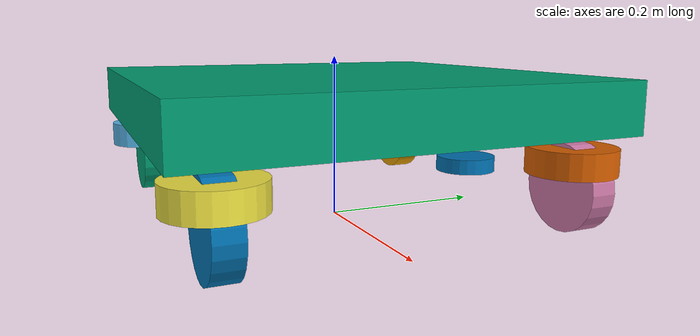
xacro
<?xml version="1.0"?>
<robot name="omni_robot" xmlns:xacro="https://ros.org/wiki/xacro">
	<xacro:arg name="robot_name" default="omni_robot"/>
	<xacro:include filename="$(find omni_sim)/xacro/wheel_macro.xacro"/>
	<xacro:include filename="$(find omni_sim)/xacro/control_macro.xacro"/>
	<xacro:include filename="$(find omni_sim)/xacro/sensor_macro.xacro"/>

	<link name="base_footprint"/>

	<joint name="base_joint" type="fixed">
		<parent link="base_footprint"/>
		<child link="base_link"/>
	</joint>

	<link name="base_link"/>

	<joint name="body_joint" type="fixed">
		<parent link="base_link"/>
		<child link="body_link"/>
		<origin xyz="0 0 0.15" rpy="0 0 0"/>
	</joint>
	<link name="body_link">
		<inertial>
			<origin xyz="0 0 0" rpy="0 0 0"/>
			<mass value="2.0"/>
			<inertia ixx="0.001" ixy="0" ixz="0" iyy="0.001" iyz="0" izz="0.002"/>
		</inertial>
		<visual>
			<geometry>
				<box size="0.5 0.5 0.06"/>
			</geometry>
		</visual>
		<collision>
			<geometry>
				<box size="0.5 0.5 0.06"/>
			</geometry>
		</collision>
	</link>

	<xacro:imu_macro prefix="imu" parent="body_link" xyz="0 0 0" rpy="0 0 0"/>
	<xacro:lidar_macro prefix="laser" parent="body_link" xyz="0 0.2 -0.10" rpy="0 0 0"/>

	<xacro:wheel_macro prefix="fr_wheel" parent="body_link" xyz="0.2 0.2 -0.06"/>
	<xacro:wheel_macro prefix="fl_wheel" parent="body_link" xyz="-0.2 0.2 -0.06"/>
	<xacro:wheel_macro prefix="bl_wheel" parent="body_link" xyz="-0.2 -0.2 -0.06"/>
	<xacro:wheel_macro prefix="br_wheel" parent="body_link" xyz="0.2 -0.2 -0.06"/>

	<ros2_control name="GazeboSystem" type="system">
		<hardware>
			<plugin>gazebo_ros2_control/GazeboSystem</plugin>
		</hardware>
		<xacro:wheel_control_macro prefix="fr_wheel"/>
		<xacro:wheel_control_macro prefix="fl_wheel"/>
		<xacro:wheel_control_macro prefix="bl_wheel"/>
		<xacro:wheel_control_macro prefix="br_wheel"/>

		<xacro:imu_control_macro prefix="imu"/>
	</ros2_control>

	<gazebo>
		<plugin filename="libgazebo_ros2_control.so" name="gazebo_ros2_control">
			<parameters>$(find omni_sim)/config/omni_sim.yaml</parameters>
		</plugin>
	</gazebo>
</robot>

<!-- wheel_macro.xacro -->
<robot name="omni_robot" xmlns:xacro="https://ros.org/wiki/xacro">
    <xacro:macro name="wheel_macro" params="parent prefix xyz">
		<joint name="${prefix}_rotate_joint" type="continuous">
			<origin xyz="${xyz}" rpy="0 0 0" />
			<parent link="${parent}" />
			<child link="${prefix}_rotate_link"/>
			<limit velocity="20" effort="1.0" />
			<axis xyz="0 0 1" />
		</joint>
		<link name="${prefix}_rotate_link">
			<inertial>
				<origin xyz="0 0 0" rpy="0 0 0"/>
				<mass value="0.05" />
				<inertia ixx="0.0001" ixy="0.0" ixz="0.0" iyy="0.0001" iyz="0.0" izz="0.0001" />
			</inertial>
			<visual>
				<geometry>
					<cylinder radius="0.05" length="0.03" />
				</geometry>
			</visual>
			<collision>
				<geometry>
					<cylinder radius="0.05" length="0.03" />
				</geometry>
			</collision>
		</link>
		<joint name="${prefix}_wheel_joint" type="continuous">
			<origin xyz="0 0 -0.03" rpy="${radians(-90)} 0 0" />
			<parent link="${prefix}_rotate_link" />
			<child link="${prefix}_wheel_link" />
			<limit velocity="50" effort="2.0" />
			<axis xyz="0 0 1" />
		</joint>
		<link name="${prefix}_wheel_link">
			<inertial>
				<origin xyz="0 0 0" rpy="0 0 0" />
				<mass value="0.05" />
				<inertia ixx="0.0001" ixy="0.0" ixz="0.0" iyy="0.0001" iyz="0.0" izz="0.0001" />
			</inertial>
			<visual>
				<geometry>
					<cylinder radius="0.05" length="0.03" />
				</geometry>
			</visual>
			<collision>
				<geometry>
					<cylinder radius="0.05" length="0.03" />
				</geometry>
			</collision>
		</link>
		<gazebo reference="${prefix}_wheel_link">
			<mu1 value="2.5"/>
			<mu2 value="2.5"/>
			<kp value="50000"/>
			<kd value="10"/>
		</gazebo>
    </xacro:macro>
</robot>

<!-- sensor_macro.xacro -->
<robot xmlns:xacro="https://www.ros.org/wiki/xacro">
	<xacro:macro name="imu_macro" params="parent prefix xyz rpy">
		<joint name="${prefix}_join" type="fixed">
			<origin xyz="${xyz}" rpy="${rpy}"/>
			<parent link="${parent}"/>
			<child link="${prefix}_link"/>
		</joint>
		<link name="${prefix}_link"/>
		<gazebo reference="${prefix}_link">
			<sensor name="${prefix}_sensor" type="imu">
				<always_on>1</always_on>
				<update_rate>10.0</update_rate>
			</sensor>
		</gazebo>
	</xacro:macro>

	<xacro:macro name="imu_control_macro" params="prefix">
		<sensor name="${prefix}_sensor">
			<state_interface name="orientation.x"/>
			<state_interface name="orientation.y"/>
			<state_interface name="orientation.z"/>
			<state_interface name="orientation.w"/>
			<state_interface name="angular_velocity.x"/>
			<state_interface name="angular_velocity.y"/>
			<state_interface name="angular_velocity.z"/>
			<state_interface name="linear_acceleration.x"/>
			<state_interface name="linear_acceleration.y"/>
			<state_interface name="linear_acceleration.z"/>
		</sensor>
	</xacro:macro>

	<xacro:macro name="lidar_macro" params="parent prefix xyz rpy">
		<joint name="${prefix}_joint" type="fixed">
			<origin xyz="${xyz}" rpy="${rpy}"/>
			<parent link="${parent}"/>
			<child link="${prefix}_link"/>
		</joint>
		<link name="${prefix}_link">
			<visual>
				<geometry>
					<cylinder radius="0.04" length="0.02"/>
				</geometry>
			</visual>
		</link>
		<gazebo reference="${prefix}_link">
			<sensor name="${prefix}_link" type="ray">
				<topic>scan</topic>
				<ignition_frame_id>${prefix}_link</ignition_frame_id>
				<update_rate>5</update_rate>
				<ray>
					<scan>
						<horizontal>
							<samples>360</samples>
							<resolution>1</resolution>
							<min_angle>0</min_angle>
							<max_angle>6.28</max_angle>
						</horizontal>
					</scan>
					<range>
						<min>0.120000</min>
						<max>20.0</max>
						<resolution>0.015000</resolution>
					</range>
					<frame_id>${prefix}_link</frame_id>
					<noise>
						<type>gaussian</type>
						<mean>0.0</mean>
						<stddev>0.01</stddev>
					</noise>
				</ray>
				<always_on>true</always_on>
				<visualize>false</visualize>
				<plugin name="turtlebot3_laserscan" filename="libgazebo_ros_ray_sensor.so">
					<ros>
						<remapping>~/out:=scan</remapping>
					</ros>
					<output_type>sensor_msgs/LaserScan</output_type>
					<frame_name>${prefix}_link</frame_name>
				</plugin>
			</sensor>
		</gazebo>
	</xacro:macro>
</robot>
